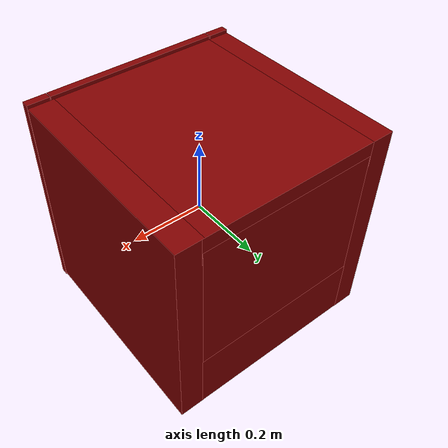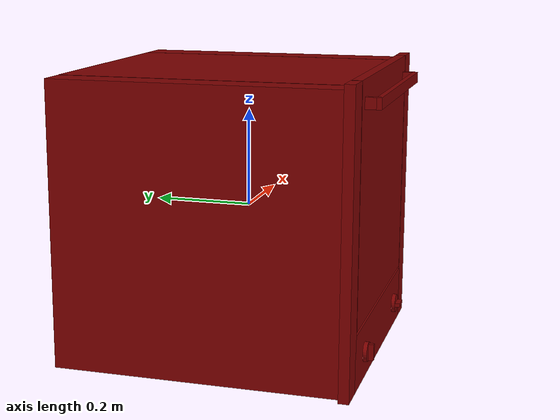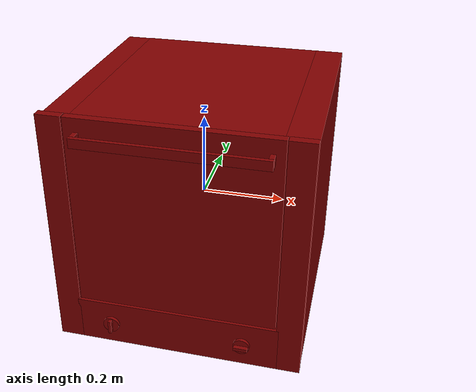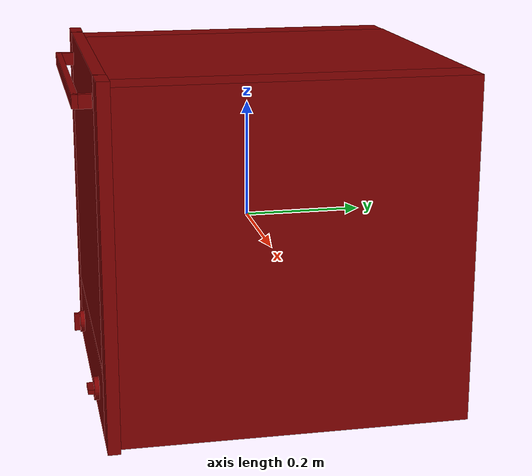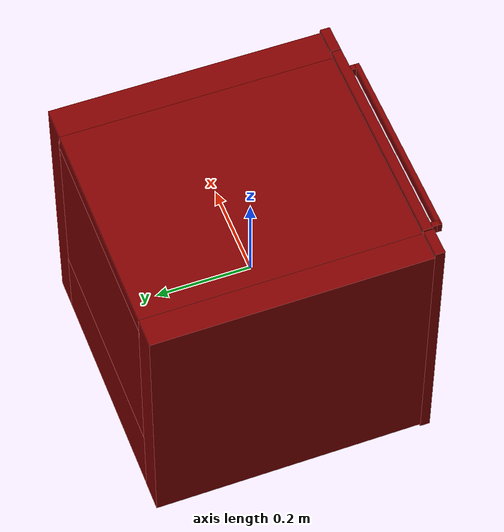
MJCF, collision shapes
<mujoco model="model">
  <compiler angle="radian"/>
  <asset>
    <mesh file="visuals/Body001.obj" name="Body001_vis"/>
    <mesh file="visuals/Door001.obj" name="Door001_vis"/>
    <mesh file="visuals/Door001_Clear.obj" name="Door001_Clear_vis"/>
    <mesh file="visuals/Knob001.obj" name="Knob001_vis"/>
    <mesh file="visuals/Knob002.obj" name="Knob002_vis"/>
    <mesh file="visuals/Shelf001.obj" name="Shelf001_vis"/>
    <mesh file="visuals/Shelf002.obj" name="Shelf002_vis"/>
    <texture file="visuals/T_BC001.png" name="Body001_material" type="2d"/>
    <material name="Body001_material" rgba="1 1 1 1.0" texture="Body001_material" shininess="0.4472135901451111" specular="1"/>
    <texture file="visuals/T_BC001.png" name="Door001_material" type="2d"/>
    <material name="Door001_material" rgba="1 1 1 1.0" texture="Door001_material" shininess="0.4472135901451111" specular="1"/>
    <material name="Door001_Clear_material" rgba="0.06299802660942078 0.06299802660942078 0.06299802660942078 0.800000011920929" shininess="0.4472135901451111" specular="0.5"/>
    <texture file="visuals/T_BC001.png" name="Knob001_material" type="2d"/>
    <material name="Knob001_material" rgba="1 1 1 1.0" texture="Knob001_material" shininess="0.4472135901451111" specular="1"/>
    <texture file="visuals/T_BC001.png" name="Knob002_material" type="2d"/>
    <material name="Knob002_material" rgba="1 1 1 1.0" texture="Knob002_material" shininess="0.4472135901451111" specular="1"/>
    <texture file="visuals/T_BC001.png" name="Shelf001_material" type="2d"/>
    <material name="Shelf001_material" rgba="1 1 1 1.0" texture="Shelf001_material" shininess="0.4472135901451111" specular="3"/>
    <texture file="visuals/T_BC001.png" name="Shelf002_material" type="2d"/>
    <material name="Shelf002_material" rgba="1 1 1 1.0" texture="Shelf002_material" shininess="0.4472135901451111" specular="3"/>
  </asset>
  <default>
    <default class="visual">
      <geom conaffinity="0" contype="0" group="1" type="mesh"/>
    </default>
    <default class="collision">
      <geom group="0" rgba="0.5 0 0 0.5"/>
    </default>
    <default class="spawn">
      <geom group="0" rgba="1 1 1 0.5" contype="0" conaffinity="0"/>
      <site group="0" rgba="1 1 1 0.5"/>
    </default>
    <default class="region">
      <geom group="1" conaffinity="0" contype="0" rgba="0 1 0 0"/>
    </default>
  </default>
  <worldbody>
    <body>
      <body name="object">
        <geom mesh="Body001_vis" type="mesh" solimp="0.998 0.998 0.001" solref="0.001 1" density="100" friction="0.95 0.3 0.1" class="visual" material="Body001_material"/>
        <geom class="collision" type="box" pos="-0.263010 0.025651 -0.001235" size="0.033552136272192 0.2859603762626648 0.28643712401390076" quat="1.0 0.0 0.0 0.0"/>
        <geom class="collision" type="box" pos="0.262634 0.025651 -0.000524" size="0.03434443101286888 0.2859603762626648 0.28642332553863525" quat="1.0 0.0 0.0 0.0"/>
        <geom class="collision" type="box" pos="-0.000231 0.026091 0.250526" size="0.23474690318107605 0.2855205237865448 0.03526327759027481" quat="1.0 0.0 0.0 0.0"/>
        <geom class="collision" type="box" pos="-0.000231 0.026168 -0.203068" size="0.23474691808223724 0.28544390201568604 0.08306761085987091" quat="1.0 0.0 0.0 0.0"/>
        <geom class="collision" type="box" pos="-0.000231 0.261039 0.034602" size="0.23323078453540802 0.050572797656059265 0.21207645535469055" quat="1.0 0.0 0.0 0.0"/>
        <geom class="collision" type="box" pos="-0.267634 -0.269972 0.000000" size="0.028928635641932487 0.010416585952043533 0.2950001060962677" quat="1.0 0.0 0.0 0.0"/>
        <geom class="collision" type="box" pos="0.267977 -0.269972 0.000000" size="0.029523305594921112 0.010416585952043533 0.2950001060962677" quat="1.0 0.0 0.0 0.0"/>
        <geom class="collision" type="box" pos="-0.000230 -0.267289 -0.238574" size="0.24377313256263733 0.01309970859438181 0.056426554918289185" quat="3.1391647326017846e-07 0.0 0.0 1.0"/>
        <geom class="collision" type="box" pos="-0.227253 -0.047097 0.059066" size="0.0027087966445833445 0.155648872256279 0.15344060957431793" quat="1.0 0.0 0.0 0.0"/>
        <geom class="collision" type="box" pos="-0.221249 -0.047097 -0.060222" size="0.0046804435551166534 0.14901916682720184 0.003728388110175729" quat="3.1391647326017846e-07 0.0 0.0 1.0"/>
        <geom class="collision" type="box" pos="-0.221249 -0.047097 -0.076071" size="0.0046804435551166534 0.14901916682720184 0.0037283897399902344" quat="3.1391647326017846e-07 0.0 0.0 1.0"/>
        <geom class="collision" type="box" pos="-0.221249 -0.047097 -0.022537" size="0.0046804435551166534 0.14901916682720184 0.003728388110175729" quat="3.1391647326017846e-07 0.0 0.0 1.0"/>
        <geom class="collision" type="box" pos="-0.221249 -0.047097 -0.044021" size="0.0046804435551166534 0.14901916682720184 0.0037283862475305796" quat="3.1391647326017846e-07 0.0 0.0 1.0"/>
        <geom class="collision" type="box" pos="-0.221249 -0.047097 -0.006101" size="0.0046804435551166534 0.14901916682720184 0.0037283876445144415" quat="3.1391647326017846e-07 0.0 0.0 1.0"/>
        <geom class="collision" type="box" pos="-0.221249 -0.047097 0.012801" size="0.0046804435551166534 0.14901916682720184 0.003728387178853154" quat="3.1391647326017846e-07 0.0 0.0 1.0"/>
        <geom class="collision" type="box" pos="-0.221249 -0.047097 0.028650" size="0.0046804435551166534 0.14901916682720184 0.0037283888086676598" quat="3.1391647326017846e-07 0.0 0.0 1.0"/>
        <geom class="collision" type="box" pos="-0.221249 -0.047097 0.046612" size="0.0046804435551166534 0.14901916682720184 0.0037283862475305796" quat="3.1391647326017846e-07 0.0 0.0 1.0"/>
        <geom class="collision" type="box" pos="-0.221249 -0.047097 0.062226" size="0.0046804435551166534 0.14901916682720184 0.0037283897399902344" quat="3.1391647326017846e-07 0.0 0.0 1.0"/>
        <geom class="collision" type="box" pos="-0.221249 -0.047097 0.081363" size="0.0046804435551166534 0.14901916682720184 0.0037283897399902344" quat="3.1391647326017846e-07 0.0 0.0 1.0"/>
        <geom class="collision" type="box" pos="-0.221249 -0.047097 0.097329" size="0.0046804435551166534 0.14901916682720184 0.0037283897399902344" quat="3.1391647326017846e-07 0.0 0.0 1.0"/>
        <geom class="collision" type="box" pos="-0.221249 -0.047097 0.114587" size="0.0046804435551166534 0.14901916682720184 0.0037283897399902344" quat="3.1391647326017846e-07 0.0 0.0 1.0"/>
        <geom class="collision" type="box" pos="-0.221249 -0.047097 0.131493" size="0.0046804435551166534 0.14901916682720184 0.0037283897399902344" quat="3.1391647326017846e-07 0.0 0.0 1.0"/>
        <geom class="collision" type="box" pos="-0.221249 -0.047097 0.146989" size="0.0046804435551166534 0.14901916682720184 0.0037283897399902344" quat="3.1391647326017846e-07 0.0 0.0 1.0"/>
        <geom class="collision" type="box" pos="-0.221249 -0.047097 0.163426" size="0.0046804435551166534 0.14901916682720184 0.0037283897399902344" quat="3.1391647326017846e-07 0.0 0.0 1.0"/>
        <geom class="collision" type="box" pos="-0.221249 -0.047097 0.182092" size="0.0046804435551166534 0.14901916682720184 0.0037283897399902344" quat="3.1391647326017846e-07 0.0 0.0 1.0"/>
        <geom class="collision" type="box" pos="-0.221249 -0.047097 0.198176" size="0.0046804435551166534 0.14901916682720184 0.0037283897399902344" quat="3.1391647326017846e-07 0.0 0.0 1.0"/>
        <geom class="collision" type="box" pos="0.230215 -0.047097 0.059066" size="0.0027087966445833445 0.155648872256279 0.15344060957431793" quat="7.549790126404332e-08 0.0 0.0 -1.0"/>
        <geom class="collision" type="box" pos="0.224211 -0.047097 -0.060222" size="0.0046804435551166534 0.14901915192604065 0.003728388110175729" quat="1.0 0.0 -0.0 -8.742277657347586e-08"/>
        <geom class="collision" type="box" pos="0.224211 -0.047097 -0.076071" size="0.0046804435551166534 0.14901915192604065 0.0037283897399902344" quat="1.0 0.0 -0.0 -8.742277657347586e-08"/>
        <geom class="collision" type="box" pos="0.224211 -0.047097 -0.022537" size="0.0046804435551166534 0.14901915192604065 0.003728388110175729" quat="1.0 0.0 -0.0 -8.742277657347586e-08"/>
        <geom class="collision" type="box" pos="0.224211 -0.047097 -0.044021" size="0.0046804435551166534 0.14901915192604065 0.0037283862475305796" quat="1.0 0.0 -0.0 -8.742277657347586e-08"/>
        <geom class="collision" type="box" pos="0.224211 -0.047097 -0.006101" size="0.0046804435551166534 0.14901915192604065 0.0037283876445144415" quat="1.0 0.0 -0.0 -8.742277657347586e-08"/>
        <geom class="collision" type="box" pos="0.224211 -0.047097 0.012801" size="0.0046804435551166534 0.14901915192604065 0.003728387178853154" quat="1.0 0.0 -0.0 -8.742277657347586e-08"/>
        <geom class="collision" type="box" pos="0.224211 -0.047097 0.028650" size="0.0046804435551166534 0.14901915192604065 0.0037283888086676598" quat="1.0 0.0 -0.0 -8.742277657347586e-08"/>
        <geom class="collision" type="box" pos="0.224211 -0.047097 0.046612" size="0.0046804435551166534 0.14901915192604065 0.0037283862475305796" quat="1.0 0.0 -0.0 -8.742277657347586e-08"/>
        <geom class="collision" type="box" pos="0.224211 -0.047097 0.062226" size="0.0046804435551166534 0.14901915192604065 0.0037283897399902344" quat="1.0 0.0 -0.0 -8.742277657347586e-08"/>
        <geom class="collision" type="box" pos="0.224211 -0.047097 0.081363" size="0.0046804435551166534 0.14901915192604065 0.0037283897399902344" quat="1.0 0.0 -0.0 -8.742277657347586e-08"/>
        <geom class="collision" type="box" pos="0.224211 -0.047097 0.097329" size="0.0046804435551166534 0.14901915192604065 0.0037283897399902344" quat="1.0 0.0 -0.0 -8.742277657347586e-08"/>
        <geom class="collision" type="box" pos="0.224211 -0.047097 0.114587" size="0.0046804435551166534 0.14901915192604065 0.0037283897399902344" quat="1.0 0.0 -0.0 -8.742277657347586e-08"/>
        <geom class="collision" type="box" pos="0.224211 -0.047097 0.131493" size="0.0046804435551166534 0.14901915192604065 0.0037283897399902344" quat="1.0 0.0 -0.0 -8.742277657347586e-08"/>
        <geom class="collision" type="box" pos="0.224211 -0.047097 0.146989" size="0.0046804435551166534 0.14901915192604065 0.0037283897399902344" quat="1.0 0.0 -0.0 -8.742277657347586e-08"/>
        <geom class="collision" type="box" pos="0.224211 -0.047097 0.163426" size="0.0046804435551166534 0.14901915192604065 0.0037283897399902344" quat="1.0 0.0 -0.0 -8.742277657347586e-08"/>
        <geom class="collision" type="box" pos="0.224211 -0.047097 0.182092" size="0.0046804435551166534 0.14901915192604065 0.0037283897399902344" quat="1.0 0.0 -0.0 -8.742277657347586e-08"/>
        <geom class="collision" type="box" pos="0.224211 -0.047097 0.198176" size="0.0046804435551166534 0.14901915192604065 0.0037283897399902344" quat="1.0 0.0 -0.0 -8.742277657347586e-08"/>
        <body name="Door001">
          <joint axis="1.0 0.0 0.0" pos="-0.000000 -0.279737 -0.176566" limited="true" name="Door001_joint" range="0.0 1.15" type="hinge" damping="5" frictionloss="1" armature=".01" stiffness="0.05"/>
          <geom mesh="Door001_vis" type="mesh" solimp="0.998 0.998 0.001" solref="0.001 1" density="100" friction="0.95 0.3 0.1" class="visual" material="Door001_material"/>
          <geom class="collision" type="box" pos="0.000410 -0.270235 0.059584" size="0.23592068254947662 0.010153942741453648 0.2354164570569992" quat="1.0 0.0 0.0 0.0"/>
          <geom class="collision" type="box" pos="-0.206118 -0.293212 0.251424" size="0.005454096011817455 0.015250047668814659 0.011146883480250835" quat="1.0 0.0 0.0 0.0"/>
          <geom class="collision" type="box" pos="0.210353 -0.293212 0.251424" size="0.005454096011817455 0.015250047668814659 0.011146883480250835" quat="1.0 0.0 0.0 0.0"/>
          <geom class="collision" type="box" pos="0.002127 -0.306589 0.251424" size="0.21373148262500763 0.005022375378757715 0.011146883480250835" quat="1.0 0.0 0.0 0.0"/>
          <body name="Door001_Clear">
            <geom mesh="Door001_Clear_vis" type="mesh" solimp="0.998 0.998 0.001" solref="0.001 1" density="100" friction="0.95 0.3 0.1" class="visual" material="Door001_Clear_material"/>
            <geom class="collision" type="box" pos="0.002223 -0.275272 0.060007" size="0.20330582559108734 0.0023456367198377848 0.1323758214712143" quat="1.0 0.0 0.0 0.0"/>
          </body>
        </body>
        <body name="Knob001">
          <joint axis="0.0 1.0 0.0" pos="-0.159876 -0.289999 -0.238700" limited="true" name="Knob001_joint" range="0.0 4.1887902047863905" type="hinge" damping="0.05" armature="0.001"/>
          <geom mesh="Knob001_vis" type="mesh" solimp="0.998 0.998 0.001" solref="0.001 1" density="100" friction="0.95 0.3 0.1" class="visual" material="Knob001_material"/>
          <geom class="collision" type="cylinder" pos="-0.159856 -0.285319 -0.238799" size="0.019565556198358536 0.004038296639919281" quat="0.7071067094802856 0.70710688829422 0.0 0.0"/>
          <geom class="collision" type="box" pos="-0.159837 -0.294538 -0.238639" size="0.003911550156772137 0.005381183698773384 0.016494590789079666" quat="1.0 0.0 0.0 0.0"/>
        </body>
        <body name="Knob002">
          <joint axis="0.0 1.0 0.0" pos="0.159778 -0.289999 -0.238700" limited="true" name="Knob002_joint" range="0.0 5.323254218582705" type="hinge" damping="0.05" armature="0.001"/>
          <geom mesh="Knob002_vis" type="mesh" solimp="0.998 0.998 0.001" solref="0.001 1" density="100" friction="0.95 0.3 0.1" class="visual" material="Knob002_material"/>
          <geom class="collision" type="box" pos="0.159716 -0.294538 -0.238746" size="0.003911550156772137 0.005381183698773384 0.016494590789079666" quat="0.7071068286895752 -2.7605167929323216e-08 0.7071067690849304 2.7605166152966376e-08"/>
          <geom class="collision" type="cylinder" pos="0.159688 -0.285319 -0.238799" size="0.019565556198358536 0.004038296639919281" quat="0.7071067094802856 0.70710688829422 0.0 0.0"/>
        </body>
        <body name="Shelf001">
          <joint axis="0.0 -1.0 0.0" pos="0.001493 -0.044034 0.002009" limited="true" name="Shelf001_joint" range="0.0 0.25" type="slide" damping="1" frictionloss="1" armature=".01" stiffness="0.05"/>
          <geom mesh="Shelf001_vis" type="mesh" solimp="0.998 0.998 0.001" solref="0.001 1" density="100" friction="0.95 0.3 0.1" class="visual" material="Shelf001_material"/>
          <geom class="collision" type="box" pos="0.000011 -0.044006 0.002148" size="0.22317492961883545 0.14247678220272064 0.0027160942554473877" quat="1.0 0.0 0.0 0.0"/>
        </body>
        <body name="Shelf002">
          <joint axis="0.0 -1.0 0.0" pos="0.001493 -0.044034 0.121720" limited="true" name="Shelf002_joint" range="0.0 0.25" type="slide" damping="1" frictionloss="1" armature=".01" stiffness="0.05"/>
          <geom mesh="Shelf002_vis" type="mesh" solimp="0.998 0.998 0.001" solref="0.001 1" density="100" friction="0.95 0.3 0.1" class="visual" material="Shelf002_material"/>
          <geom class="collision" type="box" pos="0.000011 -0.044006 0.122231" size="0.22317492961883545 0.14247678220272064 0.002408226253464818" quat="1.0 0.0 0.0 0.0"/>
        </body>
        <geom class="region" name="reg_main" type="box" pos="0.0 0.0156115 0.0" size="0.2975 0.2960005 0.295"/>
        <geom class="region" name="reg_int" type="box" pos="0.0013545000000000085 -0.021771 0.04670200000000001" size="0.2314185 0.234458 0.167647"/>
      </body>
    </body>
  </worldbody>
  <actuator>
    <motor name="Door001_joint_actuator" joint="Door001_joint" gear="50"/>
    <motor name="Knob001_joint_actuator" joint="Knob001_joint" gear="10"/>
    <motor name="Knob002_joint_actuator" joint="Knob002_joint" gear="10"/>
    <motor name="Shelf001_joint_actuator" joint="Shelf001_joint" gear="50"/>
    <motor name="Shelf002_joint_actuator" joint="Shelf002_joint" gear="50"/>
  </actuator>
</mujoco>
